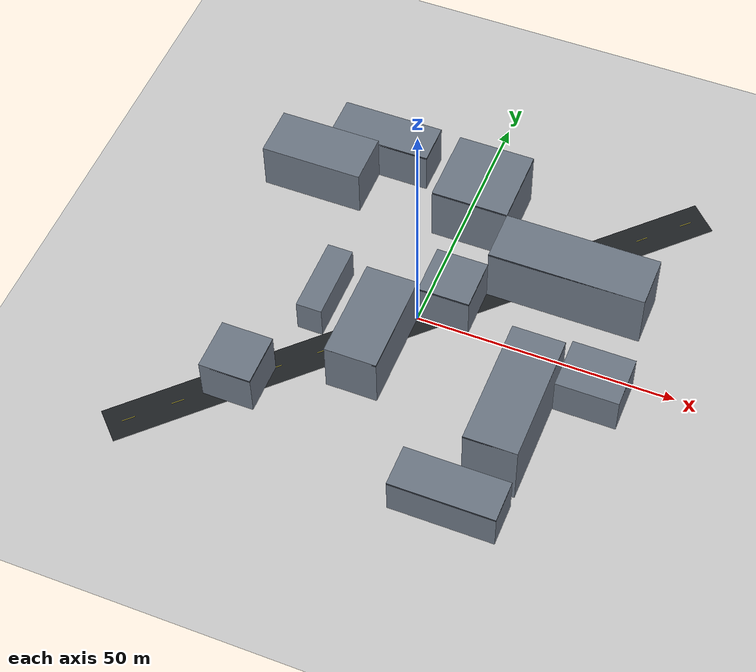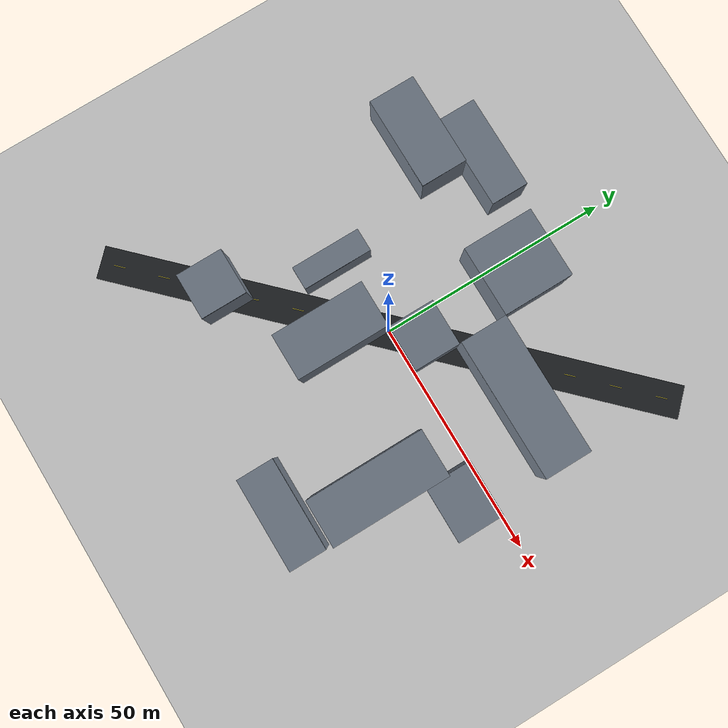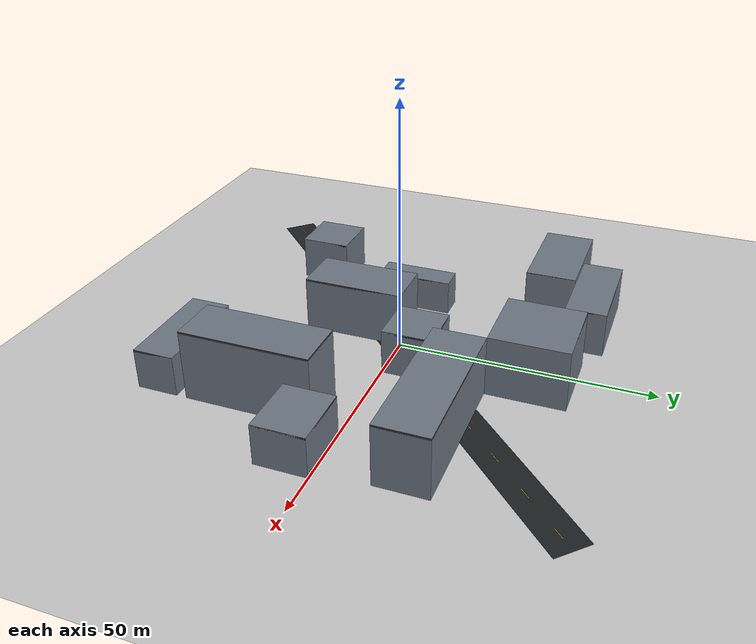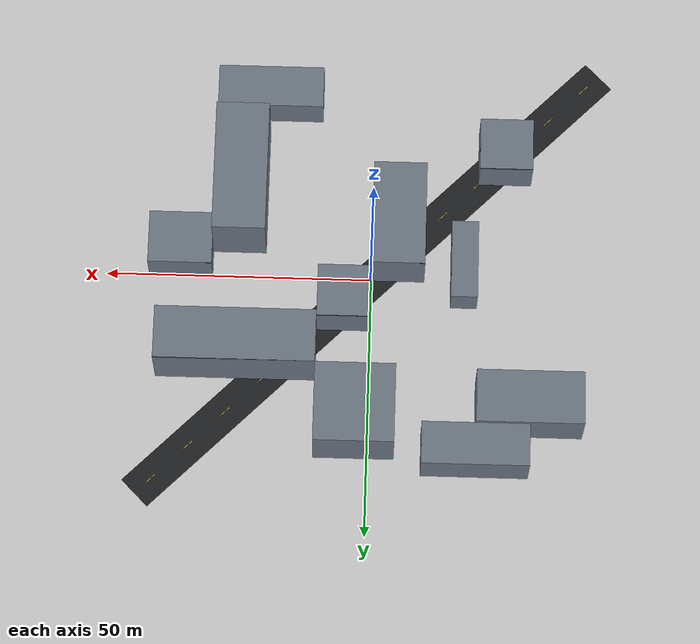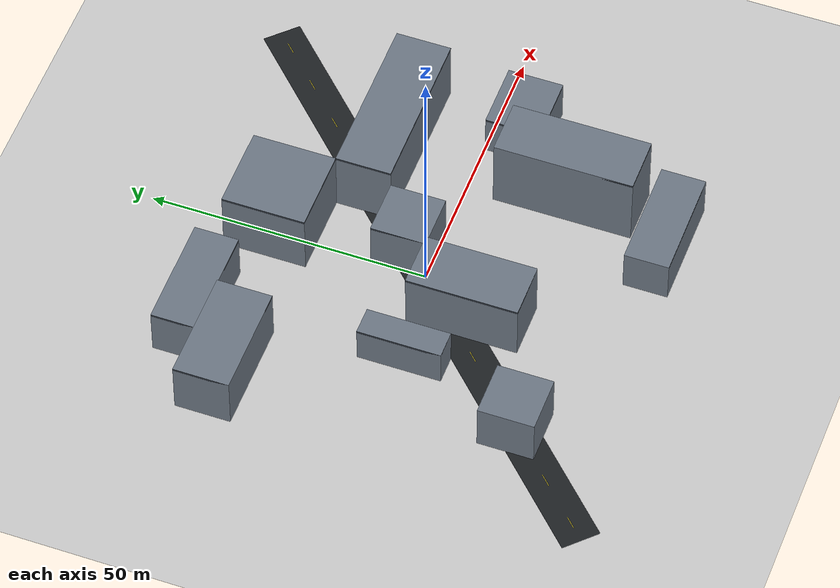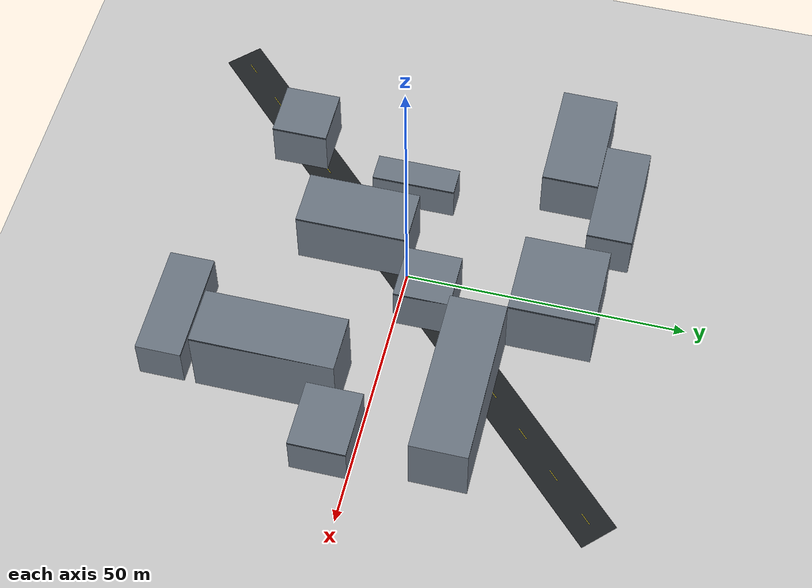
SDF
<?xml version="1.0"?>
<sdf version="1.6"><world name="logistics_3_dense_facilities">
  <physics name="default_physics" type="ode"><max_step_size>0.004</max_step_size><real_time_factor>1</real_time_factor><real_time_update_rate>250</real_time_update_rate><magnetic_field>6.0e-6 2.3e-5 -4.2e-5</magnetic_field></physics>
  <gravity>0 0 -9.8066</gravity>
  <include><uri>model://sun</uri></include>
  <include><uri>model://ground_plane</uri></include>
  <spherical_coordinates><surface_model>EARTH_WGS84</surface_model><latitude_deg>47.397742</latitude_deg><longitude_deg>8.545594</longitude_deg><elevation>488</elevation><heading_deg>0</heading_deg></spherical_coordinates>
<model name="service_road"><static>true</static><pose>0.000 0.000 0.012 0.000 0.000 0.785</pose><link name="link"><visual name="visual"><cast_shadows>false</cast_shadows><geometry><box><size>121.137 7.0 0.02</size></box></geometry><material><ambient>0.12 0.13 0.14 1</ambient><diffuse>0.12 0.13 0.14 1</diffuse></material></visual></link></model>
<model name="road_mark_00"><static>true</static><pose>-40.000 -40.000 0.026 0.000 0.000 0.785</pose><link name="link"><visual name="visual"><cast_shadows>false</cast_shadows><geometry><box><size>2.4 0.12 0.012</size></box></geometry><material><ambient>0.92 0.84 0.18 1</ambient><diffuse>0.92 0.84 0.18 1</diffuse></material></visual></link></model>
<model name="road_mark_01"><static>true</static><pose>-33.333 -33.333 0.026 0.000 0.000 0.785</pose><link name="link"><visual name="visual"><cast_shadows>false</cast_shadows><geometry><box><size>2.4 0.12 0.012</size></box></geometry><material><ambient>0.92 0.84 0.18 1</ambient><diffuse>0.92 0.84 0.18 1</diffuse></material></visual></link></model>
<model name="road_mark_02"><static>true</static><pose>-26.667 -26.667 0.026 0.000 0.000 0.785</pose><link name="link"><visual name="visual"><cast_shadows>false</cast_shadows><geometry><box><size>2.4 0.12 0.012</size></box></geometry><material><ambient>0.92 0.84 0.18 1</ambient><diffuse>0.92 0.84 0.18 1</diffuse></material></visual></link></model>
<model name="road_mark_03"><static>true</static><pose>-20.000 -20.000 0.026 0.000 0.000 0.785</pose><link name="link"><visual name="visual"><cast_shadows>false</cast_shadows><geometry><box><size>2.4 0.12 0.012</size></box></geometry><material><ambient>0.92 0.84 0.18 1</ambient><diffuse>0.92 0.84 0.18 1</diffuse></material></visual></link></model>
<model name="road_mark_04"><static>true</static><pose>-13.333 -13.333 0.026 0.000 0.000 0.785</pose><link name="link"><visual name="visual"><cast_shadows>false</cast_shadows><geometry><box><size>2.4 0.12 0.012</size></box></geometry><material><ambient>0.92 0.84 0.18 1</ambient><diffuse>0.92 0.84 0.18 1</diffuse></material></visual></link></model>
<model name="road_mark_05"><static>true</static><pose>-6.667 -6.667 0.026 0.000 0.000 0.785</pose><link name="link"><visual name="visual"><cast_shadows>false</cast_shadows><geometry><box><size>2.4 0.12 0.012</size></box></geometry><material><ambient>0.92 0.84 0.18 1</ambient><diffuse>0.92 0.84 0.18 1</diffuse></material></visual></link></model>
<model name="road_mark_06"><static>true</static><pose>0.000 0.000 0.026 0.000 0.000 0.785</pose><link name="link"><visual name="visual"><cast_shadows>false</cast_shadows><geometry><box><size>2.4 0.12 0.012</size></box></geometry><material><ambient>0.92 0.84 0.18 1</ambient><diffuse>0.92 0.84 0.18 1</diffuse></material></visual></link></model>
<model name="road_mark_07"><static>true</static><pose>6.667 6.667 0.026 0.000 0.000 0.785</pose><link name="link"><visual name="visual"><cast_shadows>false</cast_shadows><geometry><box><size>2.4 0.12 0.012</size></box></geometry><material><ambient>0.92 0.84 0.18 1</ambient><diffuse>0.92 0.84 0.18 1</diffuse></material></visual></link></model>
<model name="road_mark_08"><static>true</static><pose>13.333 13.333 0.026 0.000 0.000 0.785</pose><link name="link"><visual name="visual"><cast_shadows>false</cast_shadows><geometry><box><size>2.4 0.12 0.012</size></box></geometry><material><ambient>0.92 0.84 0.18 1</ambient><diffuse>0.92 0.84 0.18 1</diffuse></material></visual></link></model>
<model name="road_mark_09"><static>true</static><pose>20.000 20.000 0.026 0.000 0.000 0.785</pose><link name="link"><visual name="visual"><cast_shadows>false</cast_shadows><geometry><box><size>2.4 0.12 0.012</size></box></geometry><material><ambient>0.92 0.84 0.18 1</ambient><diffuse>0.92 0.84 0.18 1</diffuse></material></visual></link></model>
<model name="road_mark_10"><static>true</static><pose>26.667 26.667 0.026 0.000 0.000 0.785</pose><link name="link"><visual name="visual"><cast_shadows>false</cast_shadows><geometry><box><size>2.4 0.12 0.012</size></box></geometry><material><ambient>0.92 0.84 0.18 1</ambient><diffuse>0.92 0.84 0.18 1</diffuse></material></visual></link></model>
<model name="road_mark_11"><static>true</static><pose>33.333 33.333 0.026 0.000 0.000 0.785</pose><link name="link"><visual name="visual"><cast_shadows>false</cast_shadows><geometry><box><size>2.4 0.12 0.012</size></box></geometry><material><ambient>0.92 0.84 0.18 1</ambient><diffuse>0.92 0.84 0.18 1</diffuse></material></visual></link></model>
<model name="road_mark_12"><static>true</static><pose>40.000 40.000 0.026 0.000 0.000 0.785</pose><link name="link"><visual name="visual"><cast_shadows>false</cast_shadows><geometry><box><size>2.4 0.12 0.012</size></box></geometry><material><ambient>0.92 0.84 0.18 1</ambient><diffuse>0.92 0.84 0.18 1</diffuse></material></visual></link></model>
<model name="obstacle_00_facility_1"><static>true</static><pose>-25.000 -25.000 4.500 0 0 0</pose><link name="link"><collision name="collision"><geometry><box><size>10.000 10.000 9.000</size></box></geometry></collision><visual name="visual"><geometry><box><size>10.000 10.000 9.000</size></box></geometry><material><ambient>0.43 0.47 0.52 1</ambient><diffuse>0.43 0.47 0.52 1</diffuse></material></visual></link></model>
<model name="obstacle_00_facility_1_roof"><static>true</static><pose>-25.000 -25.000 8.820 0.000 0.000 0.000</pose><link name="link"><visual name="visual"><cast_shadows>false</cast_shadows><geometry><box><size>10.000 10.000 0.360</size></box></geometry><material><ambient>0.20 0.23 0.27 1</ambient><diffuse>0.20 0.23 0.27 1</diffuse></material></visual></link></model>
<model name="obstacle_01_facility_2"><static>true</static><pose>25.000 15.000 6.000 0 0 0</pose><link name="link"><collision name="collision"><geometry><box><size>30.000 10.000 12.000</size></box></geometry></collision><visual name="visual"><geometry><box><size>30.000 10.000 12.000</size></box></geometry><material><ambient>0.43 0.47 0.52 1</ambient><diffuse>0.43 0.47 0.52 1</diffuse></material></visual></link></model>
<model name="obstacle_01_facility_2_roof"><static>true</static><pose>25.000 15.000 11.820 0.000 0.000 0.000</pose><link name="link"><visual name="visual"><cast_shadows>false</cast_shadows><geometry><box><size>30.000 10.000 0.360</size></box></geometry><material><ambient>0.20 0.23 0.27 1</ambient><diffuse>0.20 0.23 0.27 1</diffuse></material></visual></link></model>
<model name="obstacle_02_facility_3"><static>true</static><pose>20.000 -36.000 4.000 0 0 0</pose><link name="link"><collision name="collision"><geometry><box><size>20.000 8.000 8.000</size></box></geometry></collision><visual name="visual"><geometry><box><size>20.000 8.000 8.000</size></box></geometry><material><ambient>0.43 0.47 0.52 1</ambient><diffuse>0.43 0.47 0.52 1</diffuse></material></visual></link></model>
<model name="obstacle_02_facility_3_roof"><static>true</static><pose>20.000 -36.000 7.820 0.000 0.000 0.000</pose><link name="link"><visual name="visual"><cast_shadows>false</cast_shadows><geometry><box><size>20.000 8.000 0.360</size></box></geometry><material><ambient>0.20 0.23 0.27 1</ambient><diffuse>0.20 0.23 0.27 1</diffuse></material></visual></link></model>
<model name="obstacle_03_facility_4"><static>true</static><pose>-30.000 25.000 5.000 0 0 0</pose><link name="link"><collision name="collision"><geometry><box><size>20.000 10.000 10.000</size></box></geometry></collision><visual name="visual"><geometry><box><size>20.000 10.000 10.000</size></box></geometry><material><ambient>0.43 0.47 0.52 1</ambient><diffuse>0.43 0.47 0.52 1</diffuse></material></visual></link></model>
<model name="obstacle_03_facility_4_roof"><static>true</static><pose>-30.000 25.000 9.820 0.000 0.000 0.000</pose><link name="link"><visual name="visual"><cast_shadows>false</cast_shadows><geometry><box><size>20.000 10.000 0.360</size></box></geometry><material><ambient>0.20 0.23 0.27 1</ambient><diffuse>0.20 0.23 0.27 1</diffuse></material></visual></link></model>
<model name="obstacle_04_facility_5"><static>true</static><pose>-17.500 -2.500 3.500 0 0 0</pose><link name="link"><collision name="collision"><geometry><box><size>5.000 15.000 7.000</size></box></geometry></collision><visual name="visual"><geometry><box><size>5.000 15.000 7.000</size></box></geometry><material><ambient>0.43 0.47 0.52 1</ambient><diffuse>0.43 0.47 0.52 1</diffuse></material></visual></link></model>
<model name="obstacle_04_facility_5_roof"><static>true</static><pose>-17.500 -2.500 6.820 0.000 0.000 0.000</pose><link name="link"><visual name="visual"><cast_shadows>false</cast_shadows><geometry><box><size>5.000 15.000 0.360</size></box></geometry><material><ambient>0.20 0.23 0.27 1</ambient><diffuse>0.20 0.23 0.27 1</diffuse></material></visual></link></model>
<model name="obstacle_05_facility_6"><static>true</static><pose>-5.000 -10.000 5.500 0 0 0</pose><link name="link"><collision name="collision"><geometry><box><size>10.000 20.000 11.000</size></box></geometry></collision><visual name="visual"><geometry><box><size>10.000 20.000 11.000</size></box></geometry><material><ambient>0.43 0.47 0.52 1</ambient><diffuse>0.43 0.47 0.52 1</diffuse></material></visual></link></model>
<model name="obstacle_05_facility_6_roof"><static>true</static><pose>-5.000 -10.000 10.820 0.000 0.000 0.000</pose><link name="link"><visual name="visual"><cast_shadows>false</cast_shadows><geometry><box><size>10.000 20.000 0.360</size></box></geometry><material><ambient>0.20 0.23 0.27 1</ambient><diffuse>0.20 0.23 0.27 1</diffuse></material></visual></link></model>
<model name="obstacle_06_facility_7"><static>true</static><pose>5.000 5.000 4.500 0 0 0</pose><link name="link"><collision name="collision"><geometry><box><size>10.000 10.000 9.000</size></box></geometry></collision><visual name="visual"><geometry><box><size>10.000 10.000 9.000</size></box></geometry><material><ambient>0.43 0.47 0.52 1</ambient><diffuse>0.43 0.47 0.52 1</diffuse></material></visual></link></model>
<model name="obstacle_06_facility_7_roof"><static>true</static><pose>5.000 5.000 8.820 0.000 0.000 0.000</pose><link name="link"><visual name="visual"><cast_shadows>false</cast_shadows><geometry><box><size>10.000 10.000 0.360</size></box></geometry><material><ambient>0.20 0.23 0.27 1</ambient><diffuse>0.20 0.23 0.27 1</diffuse></material></visual></link></model>
<model name="obstacle_07_facility_8"><static>true</static><pose>25.000 -17.500 7.000 0 0 0</pose><link name="link"><collision name="collision"><geometry><box><size>10.000 25.000 14.000</size></box></geometry></collision><visual name="visual"><geometry><box><size>10.000 25.000 14.000</size></box></geometry><material><ambient>0.43 0.47 0.52 1</ambient><diffuse>0.43 0.47 0.52 1</diffuse></material></visual></link></model>
<model name="obstacle_07_facility_8_roof"><static>true</static><pose>25.000 -17.500 13.820 0.000 0.000 0.000</pose><link name="link"><visual name="visual"><cast_shadows>false</cast_shadows><geometry><box><size>10.000 25.000 0.360</size></box></geometry><material><ambient>0.20 0.23 0.27 1</ambient><diffuse>0.20 0.23 0.27 1</diffuse></material></visual></link></model>
<model name="obstacle_08_facility_9"><static>true</static><pose>36.000 -5.000 4.000 0 0 0</pose><link name="link"><collision name="collision"><geometry><box><size>12.000 10.000 8.000</size></box></geometry></collision><visual name="visual"><geometry><box><size>12.000 10.000 8.000</size></box></geometry><material><ambient>0.43 0.47 0.52 1</ambient><diffuse>0.43 0.47 0.52 1</diffuse></material></visual></link></model>
<model name="obstacle_08_facility_9_roof"><static>true</static><pose>36.000 -5.000 7.820 0.000 0.000 0.000</pose><link name="link"><visual name="visual"><cast_shadows>false</cast_shadows><geometry><box><size>12.000 10.000 0.360</size></box></geometry><material><ambient>0.20 0.23 0.27 1</ambient><diffuse>0.20 0.23 0.27 1</diffuse></material></visual></link></model>
<model name="obstacle_09_facility_10"><static>true</static><pose>-20.000 34.000 4.500 0 0 0</pose><link name="link"><collision name="collision"><geometry><box><size>20.000 8.000 9.000</size></box></geometry></collision><visual name="visual"><geometry><box><size>20.000 8.000 9.000</size></box></geometry><material><ambient>0.43 0.47 0.52 1</ambient><diffuse>0.43 0.47 0.52 1</diffuse></material></visual></link></model>
<model name="obstacle_09_facility_10_roof"><static>true</static><pose>-20.000 34.000 8.820 0.000 0.000 0.000</pose><link name="link"><visual name="visual"><cast_shadows>false</cast_shadows><geometry><box><size>20.000 8.000 0.360</size></box></geometry><material><ambient>0.20 0.23 0.27 1</ambient><diffuse>0.20 0.23 0.27 1</diffuse></material></visual></link></model>
<model name="obstacle_10_facility_11"><static>true</static><pose>2.500 27.500 6.000 0 0 0</pose><link name="link"><collision name="collision"><geometry><box><size>15.000 15.000 12.000</size></box></geometry></collision><visual name="visual"><geometry><box><size>15.000 15.000 12.000</size></box></geometry><material><ambient>0.43 0.47 0.52 1</ambient><diffuse>0.43 0.47 0.52 1</diffuse></material></visual></link></model>
<model name="obstacle_10_facility_11_roof"><static>true</static><pose>2.500 27.500 11.820 0.000 0.000 0.000</pose><link name="link"><visual name="visual"><cast_shadows>false</cast_shadows><geometry><box><size>15.000 15.000 0.360</size></box></geometry><material><ambient>0.20 0.23 0.27 1</ambient><diffuse>0.20 0.23 0.27 1</diffuse></material></visual></link></model>
<model name="start_zone"><static>true</static><pose>-40.000 -40.000 -0.009 0 0 0</pose><link name="link"><visual name="visual"><cast_shadows>false</cast_shadows><geometry><cylinder><radius>1.5</radius><length>0.02</length></cylinder></geometry><material><ambient>0.1 0.8 0.1 1</ambient><diffuse>0.1 0.8 0.1 1</diffuse></material></visual></link></model>
<model name="goal_zone"><static>true</static><pose>40.000 40.000 -0.009 0 0 0</pose><link name="link"><visual name="visual"><cast_shadows>false</cast_shadows><geometry><cylinder><radius>1.5</radius><length>0.02</length></cylinder></geometry><material><ambient>0.9 0.15 0.1 1</ambient><diffuse>0.9 0.15 0.1 1</diffuse></material></visual></link></model>
</world></sdf>
